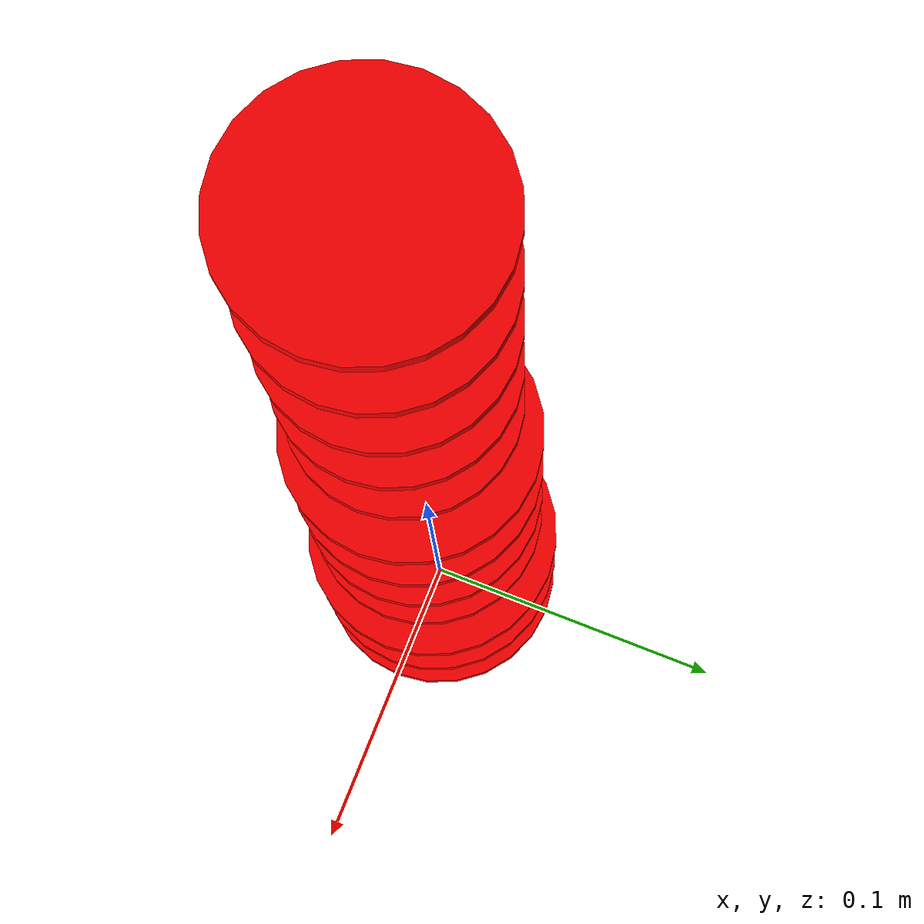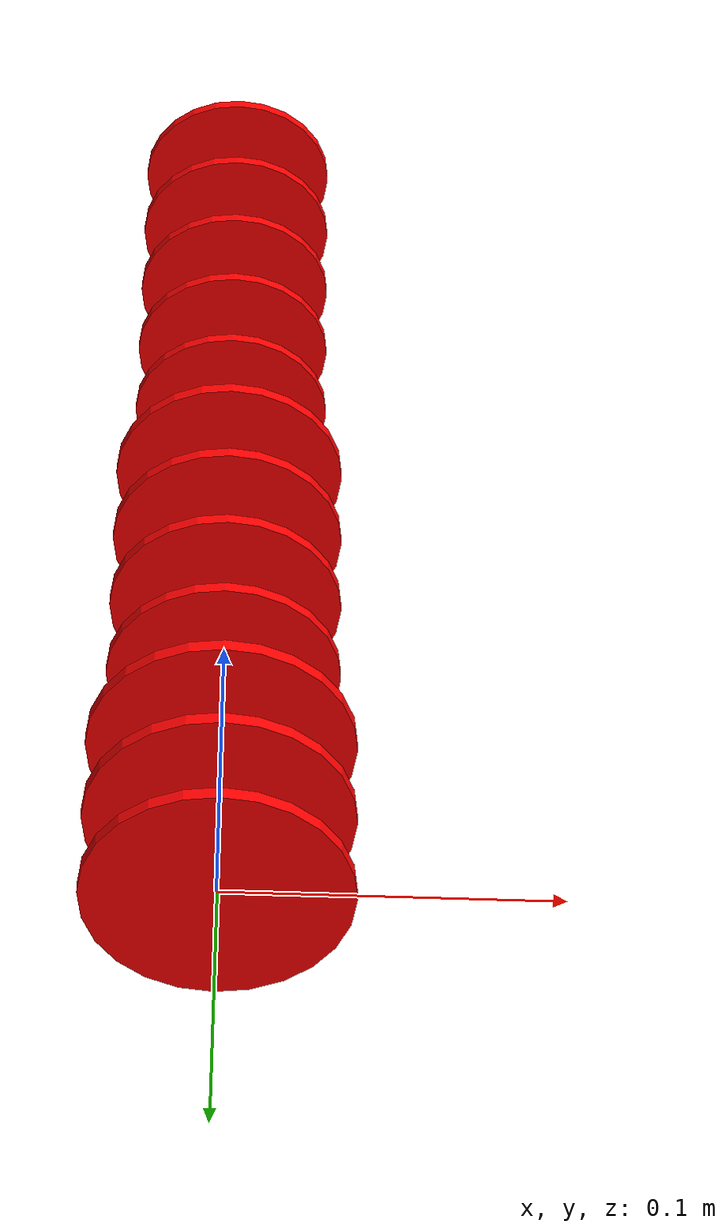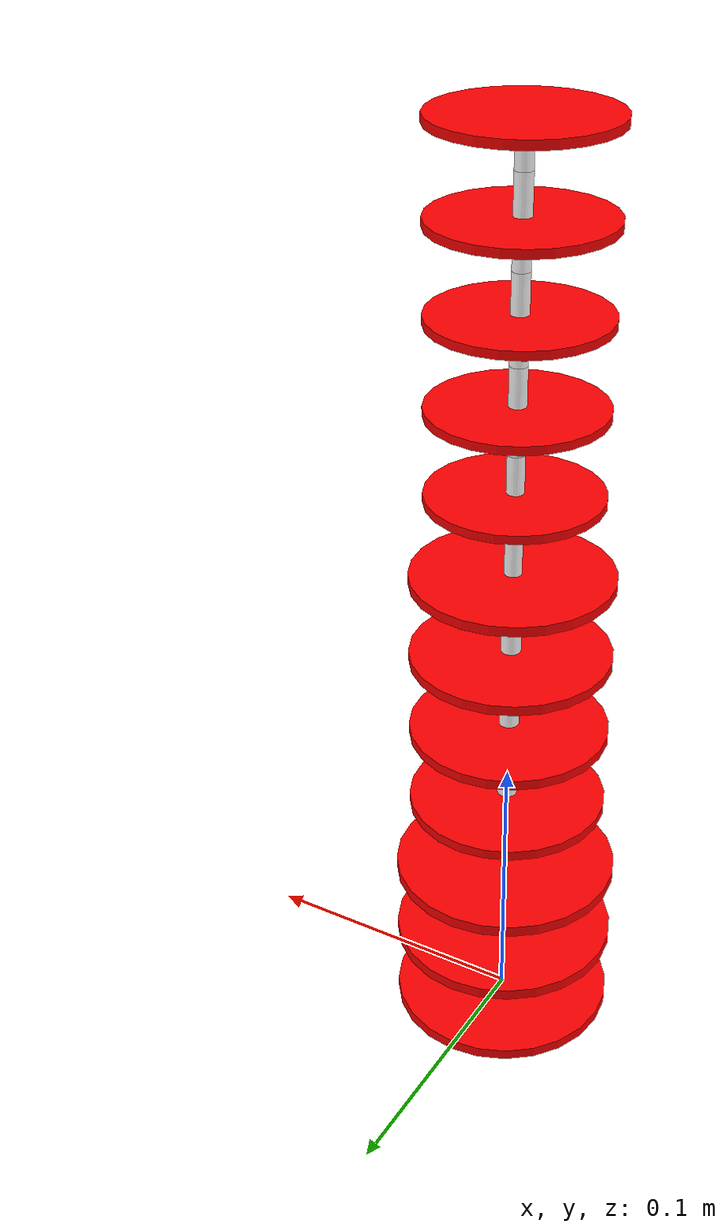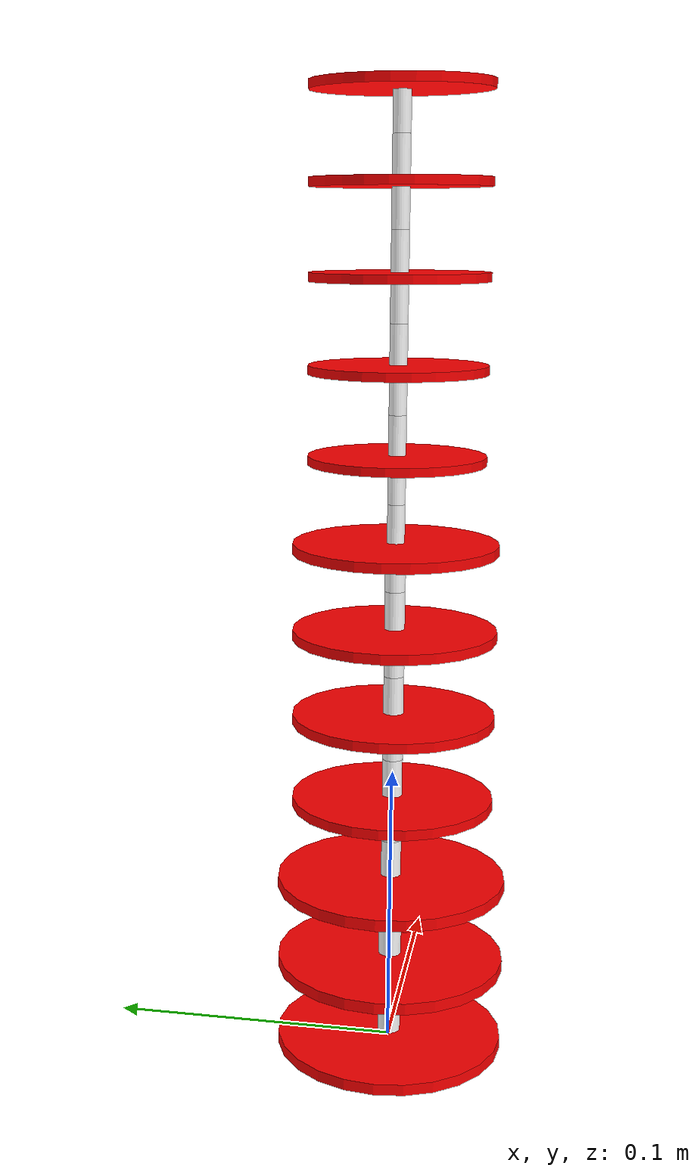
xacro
<?xml version="1.0"?>
<robot name="continuum_robot" xmlns:xacro="http://www.ros.org/wiki/xacro">

    <xacro:property name="M_PI" value="3.1415926535897931"/>

<xacro:include filename="$(find continuum_description)/urdf/Section0.urdf.xacro" />
<xacro:include filename="$(find continuum_description)/urdf/Section1.urdf.xacro" />
<xacro:include filename="$(find continuum_description)/urdf/Section2.urdf.xacro" />
<link name="world"/>
<joint name="fixed" type="fixed">
	<parent link="world"/>
	<child link="originLink"/>
</joint>

<link name="originLink"/>

<joint name="baseJoint" type="fixed">
	<parent link="originLink"/>
	<child link="S0B" />
	<origin xyz="0.0 0.0 0.0" rpy="0.0 0.0 0.0" />
</joint>

<xacro:Section0 name="Section0"/>

<joint name="JS0S1" type="fixed">
	<parent link="S0E"/>
	<child link="S1B" />
	<origin xyz="0.0 0.0 0.0" rpy="0.0 0.0 0.5235987755982988" />
</joint>

<xacro:Section1 name="Section1"/>

<joint name="JS1S2" type="fixed">
	<parent link="S1E"/>
	<child link="S2B" />
	<origin xyz="0.0 0.0 0.0" rpy="0.0 0.0 0.7853981633974483" />
</joint>

<xacro:Section2 name="Section2"/>

<joint name="endJoint" type="fixed">
	<parent link="S2E"/>
	<child link="endLink" />
	<origin xyz="0.0 0.0 0.0" rpy="0.0 0.0 0.0" />
</joint>

<link name="endLink">
</link>
</robot>

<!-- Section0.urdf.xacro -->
<robot name="continuum_robot" xmlns:xacro="http://www.ros.org/wiki/xacro">

    <xacro:macro name="Section0" params="name">

    <xacro:property name="vert_len" value="0.004" />
    <xacro:property name="vert_rad" value="0.04" />
    <xacro:property name="link_len" value="0.03" />
    <xacro:property name="cyl_radius" value="0.004" />
    <xacro:property name="link_mass" value="0.11762122895040185" />
    <xacro:property name="link_Ixx" value="9.292077087081745e-06" />
    <xacro:property name="link_Iyy" value="9.292077087081745e-06" />
    <xacro:property name="link_Izz" value="9.409698316032147e-07" />
    <xacro:property name="disk_mass" value="1.568283052672025" />
    <xacro:property name="disk_Ixx" value="0.0006294042651390396" />
    <xacro:property name="disk_Iyy" value="0.0006294042651390396" />
    <xacro:property name="disk_Izz" value="0.0012546264421376201" />

        <link name="S0B">

    	    <visual>
    		    <origin rpy="0 0 0" xyz="0 0 0 "/>
    		    <geometry>
    			    <cylinder length="${vert_len}" radius="${vert_rad}"/>
    		    </geometry>
    	    	<material name="Transparent">
    		    	<color rgba="0.5 0.5 0.5 0.5"/>
    	    	</material>
        	</visual>

        </link>

        <joint name="S0JT_in" type="continuous">
    	    <parent link="S0B"/>
    	    <child link="S0L0" />
    	    <origin xyz="0.0 0.0 0.0" rpy="0.0 0.0 0.0" />
            <axis xyz="0 0 1"/>
        </joint>

        <link name="S0L0">
    	    <visual>
    		    <origin rpy="0 0 0" xyz="0 0 0.0075"/>
    		    <geometry>
    			    <cylinder length="0.015" radius="${cyl_radius}"/>
    		    </geometry>
    		    <material name="Black">
    		    	<color rgba="1 1 1 1"/>
    	    	</material>
        	</visual>
        </link>

        <joint name="S0D0J" type="fixed">
    	    <axis xyz="0 0 1"/>
    	    <parent link="S0L0"/>
    	    <child link="S0D0" />
        	<origin rpy="0 0 0" xyz="0 0 0"/>
        </joint>

        <link name="S0D0">
    	    <visual>
    		    <origin rpy="0 0 0" xyz="0 0 0"/>
    		    <geometry>
    			    <cylinder length="${vert_len}" radius="${vert_rad}"/>
    		    </geometry>
    		    <material name="Red">
    		    	<color rgba="1 0 0 1"/>
    	    	</material>
        	</visual>
        </link>

        <joint name="S0J0" type="revolute">
    	    <parent link="S0L0"/>
    	    <child link="S0L1"/>
    	    <origin rpy="0 0 0" xyz="0 0 0.015"/>
            <limit lower="-0.5235987755982988" upper="0.5235987755982988" velocity="100.0" effort="100.0"/>
    	    <axis xyz="0 1 0"/>
        </joint>

        <link name="S0L1">
    	    <visual>
    		    <origin rpy="0 0 0" xyz="0 0 0.015"/>
    		    <geometry>
    			    <cylinder length="0.03" radius="${cyl_radius}"/>
    		    </geometry>
    		    <material name="Black">
    		    	<color rgba="1 1 1 1"/>
    	    	</material>
        	</visual>
        </link>

        <joint name="S0D1J" type="fixed">
    	    <axis xyz="0 0 1"/>
    	    <parent link="S0L1"/>
    	    <child link="S0D1" />
        	<origin rpy="0 0 0" xyz="0 0 0.015"/>
        </joint>

        <link name="S0D1">
    	    <visual>
    		    <origin rpy="0 0 0" xyz="0 0 0"/>
    		    <geometry>
    			    <cylinder length="${vert_len}" radius="${vert_rad}"/>
    		    </geometry>
    		    <material name="Red">
    		    	<color rgba="1 0 0 1"/>
    	    	</material>
        	</visual>
        </link>

        <joint name="S0J1" type="revolute">
    	    <parent link="S0L1"/>
    	    <child link="S0L2"/>
    	    <origin rpy="0 0 0" xyz="0 0 0.03"/>
            <limit lower="-0.5235987755982988" upper="0.5235987755982988" velocity="100.0" effort="100.0"/>
    	    <mimic joint="S0J0" />
    	    <axis xyz="0 1 0"/>
        </joint>

        <link name="S0L2">
    	    <visual>
    		    <origin rpy="0 0 0" xyz="0 0 0.0075"/>
    		    <geometry>
    			    <cylinder length="0.015" radius="${cyl_radius}"/>
    		    </geometry>
    		    <material name="Black">
    		    	<color rgba="1 1 1 1"/>
    	    	</material>
        	</visual>
        </link>

        <joint name="S0JT_out" type="continuous">
    	    <parent link="S0L2"/>
    	    <child link="S0E" />
    	    <origin rpy="0.0 0.0 0.0" xyz="0.0 0.0 ${link_len/2}" />
    	    <axis xyz="0 0 1"/>
    	    <mimic joint="S0JT_in" multiplier="-1" />
        </joint>

        <link name="S0E">

    	    <visual>
    		    <origin rpy="0 0 0" xyz="0 0 0"/>
    		    <geometry>
    			    <cylinder length="${vert_len}" radius="${vert_rad}"/>
    		    </geometry>
    		    <material name="Red">
    		    	<color rgba="1 0 0 1"/>
    	    	</material>
        	</visual>
        </link>

    </xacro:macro>

</robot>

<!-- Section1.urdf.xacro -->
<robot name="continuum_robot" xmlns:xacro="http://www.ros.org/wiki/xacro">

    <xacro:macro name="Section1" params="name">

    <xacro:property name="vert_len" value="0.0035000000000000005" />
    <xacro:property name="vert_rad" value="0.035" />
    <xacro:property name="link_len" value="0.03" />
    <xacro:property name="cyl_radius" value="0.0035000000000000005" />
    <xacro:property name="link_mass" value="0.09005375341515143" />
    <xacro:property name="link_Ixx" value="7.029821125970258e-06" />
    <xacro:property name="link_Iyy" value="7.029821125970258e-06" />
    <xacro:property name="link_Izz" value="5.515792396678026e-07" />
    <xacro:property name="disk_mass" value="1.050627123176767" />
    <xacro:property name="disk_Ixx" value="0.00032282707166112786" />
    <xacro:property name="disk_Iyy" value="0.00032282707166112786" />
    <xacro:property name="disk_Izz" value="0.0006435091129457698" />

        <link name="S1B">

    	    <visual>
    		    <origin rpy="0 0 0" xyz="0 0 0 "/>
    		    <geometry>
    			    <cylinder length="${vert_len}" radius="${vert_rad}"/>
    		    </geometry>
    	    	<material name="Transparent">
    		    	<color rgba="0.5 0.5 0.5 0.5"/>
    	    	</material>
        	</visual>

        </link>

        <joint name="S1JT_in" type="continuous">
    	    <parent link="S1B"/>
    	    <child link="S1L0" />
    	    <origin xyz="0.0 0.0 0.0" rpy="0.0 0.0 0.0" />
            <axis xyz="0 0 1"/>
        </joint>

        <link name="S1L0">
    	    <visual>
    		    <origin rpy="0 0 0" xyz="0 0 0.0075"/>
    		    <geometry>
    			    <cylinder length="0.015" radius="${cyl_radius}"/>
    		    </geometry>
    		    <material name="Black">
    		    	<color rgba="1 1 1 1"/>
    	    	</material>
        	</visual>
        </link>

        <joint name="S1D0J" type="fixed">
    	    <axis xyz="0 0 1"/>
    	    <parent link="S1L0"/>
    	    <child link="S1D0" />
        	<origin rpy="0 0 0" xyz="0 0 0"/>
        </joint>

        <link name="S1D0">
    	    <visual>
    		    <origin rpy="0 0 0" xyz="0 0 0"/>
    		    <geometry>
    			    <cylinder length="${vert_len}" radius="${vert_rad}"/>
    		    </geometry>
    		    <material name="Red">
    		    	<color rgba="1 0 0 1"/>
    	    	</material>
        	</visual>
        </link>

        <joint name="S1J0" type="revolute">
    	    <parent link="S1L0"/>
    	    <child link="S1L1"/>
    	    <origin rpy="0 0 0" xyz="0 0 0.015"/>
            <limit lower="-0.5235987755982988" upper="0.5235987755982988" velocity="100.0" effort="100.0"/>
    	    <axis xyz="0 1 0"/>
        </joint>

        <link name="S1L1">
    	    <visual>
    		    <origin rpy="0 0 0" xyz="0 0 0.015"/>
    		    <geometry>
    			    <cylinder length="0.03" radius="${cyl_radius}"/>
    		    </geometry>
    		    <material name="Black">
    		    	<color rgba="1 1 1 1"/>
    	    	</material>
        	</visual>
        </link>

        <joint name="S1D1J" type="fixed">
    	    <axis xyz="0 0 1"/>
    	    <parent link="S1L1"/>
    	    <child link="S1D1" />
        	<origin rpy="0 0 0" xyz="0 0 0.015"/>
        </joint>

        <link name="S1D1">
    	    <visual>
    		    <origin rpy="0 0 0" xyz="0 0 0"/>
    		    <geometry>
    			    <cylinder length="${vert_len}" radius="${vert_rad}"/>
    		    </geometry>
    		    <material name="Red">
    		    	<color rgba="1 0 0 1"/>
    	    	</material>
        	</visual>
        </link>

        <joint name="S1J1" type="revolute">
    	    <parent link="S1L1"/>
    	    <child link="S1L2"/>
    	    <origin rpy="0 0 0" xyz="0 0 0.03"/>
            <limit lower="-0.5235987755982988" upper="0.5235987755982988" velocity="100.0" effort="100.0"/>
    	    <mimic joint="S1J0" />
    	    <axis xyz="0 1 0"/>
        </joint>

        <link name="S1L2">
    	    <visual>
    		    <origin rpy="0 0 0" xyz="0 0 0.015"/>
    		    <geometry>
    			    <cylinder length="0.03" radius="${cyl_radius}"/>
    		    </geometry>
    		    <material name="Black">
    		    	<color rgba="1 1 1 1"/>
    	    	</material>
        	</visual>
        </link>

        <joint name="S1D2J" type="fixed">
    	    <axis xyz="0 0 1"/>
    	    <parent link="S1L2"/>
    	    <child link="S1D2" />
        	<origin rpy="0 0 0" xyz="0 0 0.015"/>
        </joint>

        <link name="S1D2">
    	    <visual>
    		    <origin rpy="0 0 0" xyz="0 0 0"/>
    		    <geometry>
    			    <cylinder length="${vert_len}" radius="${vert_rad}"/>
    		    </geometry>
    		    <material name="Red">
    		    	<color rgba="1 0 0 1"/>
    	    	</material>
        	</visual>
        </link>

        <joint name="S1J2" type="revolute">
    	    <parent link="S1L2"/>
    	    <child link="S1L3"/>
    	    <origin rpy="0 0 0" xyz="0 0 0.03"/>
            <limit lower="-0.5235987755982988" upper="0.5235987755982988" velocity="100.0" effort="100.0"/>
    	    <mimic joint="S1J1" />
    	    <axis xyz="0 1 0"/>
        </joint>

        <link name="S1L3">
    	    <visual>
    		    <origin rpy="0 0 0" xyz="0 0 0.015"/>
    		    <geometry>
    			    <cylinder length="0.03" radius="${cyl_radius}"/>
    		    </geometry>
    		    <material name="Black">
    		    	<color rgba="1 1 1 1"/>
    	    	</material>
        	</visual>
        </link>

        <joint name="S1D3J" type="fixed">
    	    <axis xyz="0 0 1"/>
    	    <parent link="S1L3"/>
    	    <child link="S1D3" />
        	<origin rpy="0 0 0" xyz="0 0 0.015"/>
        </joint>

        <link name="S1D3">
    	    <visual>
    		    <origin rpy="0 0 0" xyz="0 0 0"/>
    		    <geometry>
    			    <cylinder length="${vert_len}" radius="${vert_rad}"/>
    		    </geometry>
    		    <material name="Red">
    		    	<color rgba="1 0 0 1"/>
    	    	</material>
        	</visual>
        </link>

        <joint name="S1J3" type="revolute">
    	    <parent link="S1L3"/>
    	    <child link="S1L4"/>
    	    <origin rpy="0 0 0" xyz="0 0 0.03"/>
            <limit lower="-0.5235987755982988" upper="0.5235987755982988" velocity="100.0" effort="100.0"/>
    	    <mimic joint="S1J2" />
    	    <axis xyz="0 1 0"/>
        </joint>

        <link name="S1L4">
    	    <visual>
    		    <origin rpy="0 0 0" xyz="0 0 0.0075"/>
    		    <geometry>
    			    <cylinder length="0.015" radius="${cyl_radius}"/>
    		    </geometry>
    		    <material name="Black">
    		    	<color rgba="1 1 1 1"/>
    	    	</material>
        	</visual>
        </link>

        <joint name="S1JT_out" type="continuous">
    	    <parent link="S1L4"/>
    	    <child link="S1E" />
    	    <origin rpy="0.0 0.0 0.0" xyz="0.0 0.0 ${link_len/2}" />
    	    <axis xyz="0 0 1"/>
    	    <mimic joint="S1JT_in" multiplier="-1" />
        </joint>

        <link name="S1E">

    	    <visual>
    		    <origin rpy="0 0 0" xyz="0 0 0"/>
    		    <geometry>
    			    <cylinder length="${vert_len}" radius="${vert_rad}"/>
    		    </geometry>
    		    <material name="Red">
    		    	<color rgba="1 0 0 1"/>
    	    	</material>
        	</visual>
        </link>

    </xacro:macro>

</robot>

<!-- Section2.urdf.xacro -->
<robot name="continuum_robot" xmlns:xacro="http://www.ros.org/wiki/xacro">

    <xacro:macro name="Section2" params="name">

    <xacro:property name="vert_len" value="0.003" />
    <xacro:property name="vert_rad" value="0.03" />
    <xacro:property name="link_len" value="0.03" />
    <xacro:property name="cyl_radius" value="0.003" />
    <xacro:property name="link_mass" value="0.06616194128460104" />
    <xacro:property name="link_Ixx" value="5.11100996423543e-06" />
    <xacro:property name="link_Iyy" value="5.11100996423543e-06" />
    <xacro:property name="link_Izz" value="2.977287357807047e-07" />
    <xacro:property name="disk_mass" value="0.6616194128460104" />
    <xacro:property name="disk_Ixx" value="0.00014936058244998686" />
    <xacro:property name="disk_Iyy" value="0.00014936058244998686" />
    <xacro:property name="disk_Izz" value="0.0002977287357807047" />

        <link name="S2B">

    	    <visual>
    		    <origin rpy="0 0 0" xyz="0 0 0 "/>
    		    <geometry>
    			    <cylinder length="${vert_len}" radius="${vert_rad}"/>
    		    </geometry>
    	    	<material name="Transparent">
    		    	<color rgba="0.5 0.5 0.5 0.5"/>
    	    	</material>
        	</visual>

        </link>

        <joint name="S2JT_in" type="continuous">
    	    <parent link="S2B"/>
    	    <child link="S2L0" />
    	    <origin xyz="0.0 0.0 0.0" rpy="0.0 0.0 0.0" />
            <axis xyz="0 0 1"/>
        </joint>

        <link name="S2L0">
    	    <visual>
    		    <origin rpy="0 0 0" xyz="0 0 0.0075"/>
    		    <geometry>
    			    <cylinder length="0.015" radius="${cyl_radius}"/>
    		    </geometry>
    		    <material name="Black">
    		    	<color rgba="1 1 1 1"/>
    	    	</material>
        	</visual>
        </link>

        <joint name="S2D0J" type="fixed">
    	    <axis xyz="0 0 1"/>
    	    <parent link="S2L0"/>
    	    <child link="S2D0" />
        	<origin rpy="0 0 0" xyz="0 0 0"/>
        </joint>

        <link name="S2D0">
    	    <visual>
    		    <origin rpy="0 0 0" xyz="0 0 0"/>
    		    <geometry>
    			    <cylinder length="${vert_len}" radius="${vert_rad}"/>
    		    </geometry>
    		    <material name="Red">
    		    	<color rgba="1 0 0 1"/>
    	    	</material>
        	</visual>
        </link>

        <joint name="S2J0" type="revolute">
    	    <parent link="S2L0"/>
    	    <child link="S2L1"/>
    	    <origin rpy="0 0 0" xyz="0 0 0.015"/>
            <limit lower="-0.5235987755982988" upper="0.5235987755982988" velocity="100.0" effort="100.0"/>
    	    <axis xyz="0 1 0"/>
        </joint>

        <link name="S2L1">
    	    <visual>
    		    <origin rpy="0 0 0" xyz="0 0 0.015"/>
    		    <geometry>
    			    <cylinder length="0.03" radius="${cyl_radius}"/>
    		    </geometry>
    		    <material name="Black">
    		    	<color rgba="1 1 1 1"/>
    	    	</material>
        	</visual>
        </link>

        <joint name="S2D1J" type="fixed">
    	    <axis xyz="0 0 1"/>
    	    <parent link="S2L1"/>
    	    <child link="S2D1" />
        	<origin rpy="0 0 0" xyz="0 0 0.015"/>
        </joint>

        <link name="S2D1">
    	    <visual>
    		    <origin rpy="0 0 0" xyz="0 0 0"/>
    		    <geometry>
    			    <cylinder length="${vert_len}" radius="${vert_rad}"/>
    		    </geometry>
    		    <material name="Red">
    		    	<color rgba="1 0 0 1"/>
    	    	</material>
        	</visual>
        </link>

        <joint name="S2J1" type="revolute">
    	    <parent link="S2L1"/>
    	    <child link="S2L2"/>
    	    <origin rpy="0 0 0" xyz="0 0 0.03"/>
            <limit lower="-0.5235987755982988" upper="0.5235987755982988" velocity="100.0" effort="100.0"/>
    	    <mimic joint="S2J0" />
    	    <axis xyz="0 1 0"/>
        </joint>

        <link name="S2L2">
    	    <visual>
    		    <origin rpy="0 0 0" xyz="0 0 0.015"/>
    		    <geometry>
    			    <cylinder length="0.03" radius="${cyl_radius}"/>
    		    </geometry>
    		    <material name="Black">
    		    	<color rgba="1 1 1 1"/>
    	    	</material>
        	</visual>
        </link>

        <joint name="S2D2J" type="fixed">
    	    <axis xyz="0 0 1"/>
    	    <parent link="S2L2"/>
    	    <child link="S2D2" />
        	<origin rpy="0 0 0" xyz="0 0 0.015"/>
        </joint>

        <link name="S2D2">
    	    <visual>
    		    <origin rpy="0 0 0" xyz="0 0 0"/>
    		    <geometry>
    			    <cylinder length="${vert_len}" radius="${vert_rad}"/>
    		    </geometry>
    		    <material name="Red">
    		    	<color rgba="1 0 0 1"/>
    	    	</material>
        	</visual>
        </link>

        <joint name="S2J2" type="revolute">
    	    <parent link="S2L2"/>
    	    <child link="S2L3"/>
    	    <origin rpy="0 0 0" xyz="0 0 0.03"/>
            <limit lower="-0.5235987755982988" upper="0.5235987755982988" velocity="100.0" effort="100.0"/>
    	    <mimic joint="S2J1" />
    	    <axis xyz="0 1 0"/>
        </joint>

        <link name="S2L3">
    	    <visual>
    		    <origin rpy="0 0 0" xyz="0 0 0.015"/>
    		    <geometry>
    			    <cylinder length="0.03" radius="${cyl_radius}"/>
    		    </geometry>
    		    <material name="Black">
    		    	<color rgba="1 1 1 1"/>
    	    	</material>
        	</visual>
        </link>

        <joint name="S2D3J" type="fixed">
    	    <axis xyz="0 0 1"/>
    	    <parent link="S2L3"/>
    	    <child link="S2D3" />
        	<origin rpy="0 0 0" xyz="0 0 0.015"/>
        </joint>

        <link name="S2D3">
    	    <visual>
    		    <origin rpy="0 0 0" xyz="0 0 0"/>
    		    <geometry>
    			    <cylinder length="${vert_len}" radius="${vert_rad}"/>
    		    </geometry>
    		    <material name="Red">
    		    	<color rgba="1 0 0 1"/>
    	    	</material>
        	</visual>
        </link>

        <joint name="S2J3" type="revolute">
    	    <parent link="S2L3"/>
    	    <child link="S2L4"/>
    	    <origin rpy="0 0 0" xyz="0 0 0.03"/>
            <limit lower="-0.5235987755982988" upper="0.5235987755982988" velocity="100.0" effort="100.0"/>
    	    <mimic joint="S2J2" />
    	    <axis xyz="0 1 0"/>
        </joint>

        <link name="S2L4">
    	    <visual>
    		    <origin rpy="0 0 0" xyz="0 0 0.015"/>
    		    <geometry>
    			    <cylinder length="0.03" radius="${cyl_radius}"/>
    		    </geometry>
    		    <material name="Black">
    		    	<color rgba="1 1 1 1"/>
    	    	</material>
        	</visual>
        </link>

        <joint name="S2D4J" type="fixed">
    	    <axis xyz="0 0 1"/>
    	    <parent link="S2L4"/>
    	    <child link="S2D4" />
        	<origin rpy="0 0 0" xyz="0 0 0.015"/>
        </joint>

        <link name="S2D4">
    	    <visual>
    		    <origin rpy="0 0 0" xyz="0 0 0"/>
    		    <geometry>
    			    <cylinder length="${vert_len}" radius="${vert_rad}"/>
    		    </geometry>
    		    <material name="Red">
    		    	<color rgba="1 0 0 1"/>
    	    	</material>
        	</visual>
        </link>

        <joint name="S2J4" type="revolute">
    	    <parent link="S2L4"/>
    	    <child link="S2L5"/>
    	    <origin rpy="0 0 0" xyz="0 0 0.03"/>
            <limit lower="-0.5235987755982988" upper="0.5235987755982988" velocity="100.0" effort="100.0"/>
    	    <mimic joint="S2J3" />
    	    <axis xyz="0 1 0"/>
        </joint>

        <link name="S2L5">
    	    <visual>
    		    <origin rpy="0 0 0" xyz="0 0 0.0075"/>
    		    <geometry>
    			    <cylinder length="0.015" radius="${cyl_radius}"/>
    		    </geometry>
    		    <material name="Black">
    		    	<color rgba="1 1 1 1"/>
    	    	</material>
        	</visual>
        </link>

        <joint name="S2JT_out" type="continuous">
    	    <parent link="S2L5"/>
    	    <child link="S2E" />
    	    <origin rpy="0.0 0.0 0.0" xyz="0.0 0.0 ${link_len/2}" />
    	    <axis xyz="0 0 1"/>
    	    <mimic joint="S2JT_in" multiplier="-1" />
        </joint>

        <link name="S2E">

    	    <visual>
    		    <origin rpy="0 0 0" xyz="0 0 0"/>
    		    <geometry>
    			    <cylinder length="${vert_len}" radius="${vert_rad}"/>
    		    </geometry>
    		    <material name="Red">
    		    	<color rgba="1 0 0 1"/>
    	    	</material>
        	</visual>
        </link>

    </xacro:macro>

</robot>
